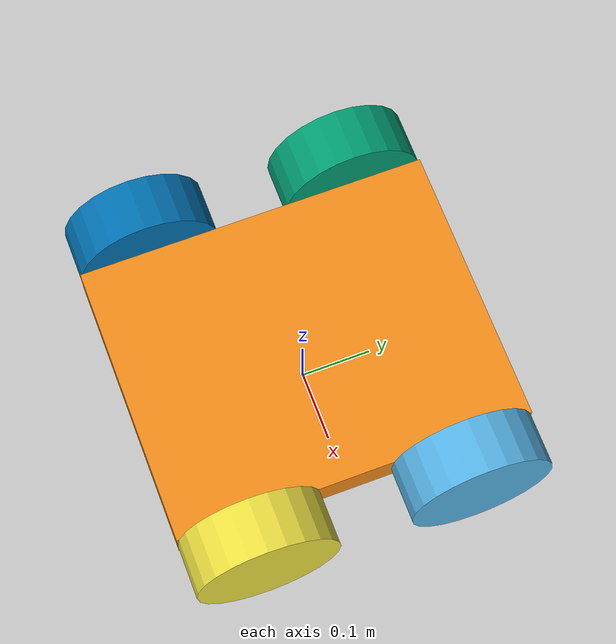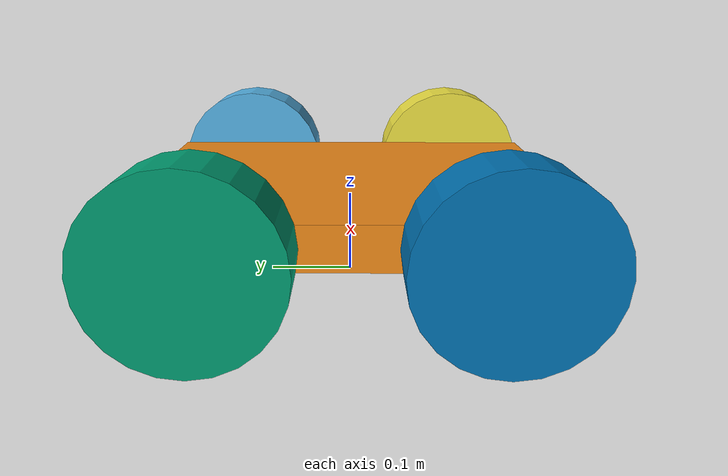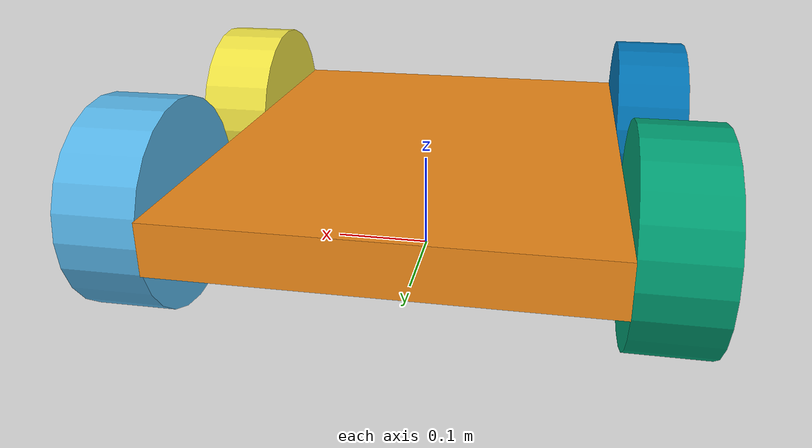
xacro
<?xml version = "1.0"?>
<robot xmlns:xacro="http://www.ros.org/wiki/xacro" name="slambot">

<xacro:property name = "wheel_radius" value = "0.1" />
<xacro:property name = "wheel_width" value = "0.075" />
<xacro:property name = "wheel_mass" value = "10.0" />

<xacro:property name = "base_width" value = "0.4" />
<xacro:property name = "base_length" value = "0.5" />
<xacro:property name = "base_height" value = "0.05" />
<xacro:property name = "base_mass" value = "10000.0" />

<xacro:property name = "laser_mass" value = "0.1" />
<xacro:property name = "laser_height" value = "0.1" />
<xacro:property name = "laser_radius" value = "0.1" />

	<link name = "base_link" >
		<inertial>
			<mass value = "${base_mass}" />
			<origin xyz = "0 0 ${wheel_radius}" rpy = "0 0 0" />
			<inertia ixx = "${base_mass*(base_length*base_length+base_height*base_height)/12}"
					 ixy = "0.0"
					 ixz = "0.0"
					 iyy = "${base_mass*(base_width*base_width+base_height*base_height)/12}"
					 iyz = "0.0"
					 izz = "${base_mass*(base_length*base_length+base_width*base_width)/12}" />
		</inertial>

		<visual name = "base_link_visual" >
			<origin xyz = "0 0 ${wheel_radius}" rpy = "0 0 0" />
			<geometry>
				<box size = "${base_width} ${base_length} ${base_height}" />
			</geometry>
		</visual>

		<collision name = "base_link_collision" >
			<origin xyz = "0 0 ${wheel_radius}" rpy = "0 0 0" />
			<geometry>
				<box size = "${base_width} ${base_length} ${base_height}" />
			</geometry>
		</collision>
	</link>

	<link name = "front_right_wheel_link" >
		<inertial>
			<mass value = "${wheel_mass}" />
			<origin xyz = "0 0 0" rpy = "0 0 0" />
			<inertia ixx = "${base_mass*(wheel_radius*wheel_radius)/2}"
					 ixy = "0.0"
					 ixz = "0.0"
					 iyy = "0.0"
					 iyz = "0.0"
					 izz = "0.0" />
		</inertial>

		<visual name = "front_right_wheel_visual" >
			<origin xyz = "0 0 0" rpy = "0 1.571 0" />
			<geometry>
				<cylinder length = "${wheel_width}" radius = "${wheel_radius}" />
			</geometry>
		</visual>

		<collision name = "front_right_wheel_collision" >
			<origin xyz = "0 0 0" rpy = "0 1.571 0" />
			<geometry>
				<cylinder length = "${wheel_width}" radius = "${wheel_radius}" />
			</geometry>
		</collision>
	</link>

	<link name = "front_left_wheel_link" >
		<inertial>
			<mass value = "${wheel_mass}" />
			<origin xyz = "0 0 0" rpy = "0 0 0" />
			<inertia ixx = "${base_mass*(wheel_radius*wheel_radius)/2}"
					 ixy = "0.0"
					 ixz = "0.0"
					 iyy = "0.0"
					 iyz = "0.0"
					 izz = "0.0" />
		</inertial>

		<visual name = "front_left_wheel_visual" >
			<origin xyz = "0 0 0" rpy = "0 -1.571 0" />
			<geometry>
				<cylinder length = "${wheel_width}" radius = "${wheel_radius}" />
			</geometry>
		</visual>

		<collision name = "front_left_wheel_collision" >
			<origin xyz = "0 0 0" rpy = "0 -1.571 0" />
			<geometry>
				<cylinder length = "${wheel_width}" radius = "${wheel_radius}" />
			</geometry>
		</collision>
	</link>

	<link name = "back_right_wheel_link" >
		<inertial>
			<mass value = "${wheel_mass}" />
			<origin xyz = "0 0 0" rpy = "0 0 0" />
			<inertia ixx = "${base_mass*(wheel_radius*wheel_radius)/2}"
					 ixy = "0.0"
					 ixz = "0.0"
					 iyy = "0.0"
					 iyz = "0.0"
					 izz = "0.0" />
		</inertial>

		<visual name = "back_right_wheel_visual" >
			<origin xyz = "0 0 0" rpy = "0 1.571 0" />
			<geometry>
				<cylinder length = "${wheel_width}" radius = "${wheel_radius}" />
			</geometry>
		</visual>

		<collision name = "back_right_wheel_collision" >
			<origin xyz = "0 0 0" rpy = "0 1.571 0" />
			<geometry>
				<cylinder length = "${wheel_width}" radius = "${wheel_radius}" />
			</geometry>
		</collision>
	</link>

	<link name = "back_left_wheel_link" >
		<inertial>
			<mass value = "${wheel_mass}" />
			<origin xyz = "0 0 0" rpy = "0 0 0" />
			<inertia ixx = "${base_mass*(wheel_radius*wheel_radius)/2}"
					 ixy = "0.0"
					 ixz = "0.0"
					 iyy = "0.0"
					 iyz = "0.0"
					 izz = "0.0" />
		</inertial>

		<visual name = "back_left_wheel_visual" >
			<origin xyz = "0 0 0" rpy = "0 -1.571 0" />
			<geometry>
				<cylinder length = "${wheel_width}" radius = "${wheel_radius}" />
			</geometry>
		</visual>

		<collision name = "back_left_wheel_collision" >
			<origin xyz = "0 0 0" rpy = "0 -1.571 0" />
			<geometry>
				<cylinder length = "${wheel_width}" radius = "${wheel_radius}" />
			</geometry>
		</collision>
	</link>

	<joint name = "front_right_wheel_joint" type = "continuous" >
		<parent link = "base_link" />
		<child link = "front_right_wheel_link" />
		<origin xyz = "${base_width/2+wheel_width/2} ${base_length/2-wheel_radius} ${wheel_radius}" rpy = "0 0 0" />
		<axis xyz = "-1 0 0" />
	</joint>

	<joint name = "front_left_wheel_joint" type = "continuous" >
		<parent link = "base_link" />
		<child link = "front_left_wheel_link" />
		<origin xyz = "-${base_width/2+wheel_width/2} ${base_length/2-wheel_radius} ${wheel_radius}" rpy = "0 0 0" />
		<axis xyz = "-1 0 0" />
	</joint>

	<joint name = "back_right_wheel_joint" type = "continuous" >
		<parent link = "base_link" />
		<child link = "back_right_wheel_link" />
		<origin xyz = "${base_width/2+wheel_width/2} -${base_length/2-wheel_radius} ${wheel_radius}" rpy = "0 0 0" />
		<axis xyz = "-1 0 0" />
	</joint>

	<joint name = "back_left_wheel_joint" type = "continuous" >
		<parent link = "base_link" />
		<child link = "back_left_wheel_link" />
		<origin xyz = "-${base_width/2+wheel_width/2} -${base_length/2-wheel_radius} ${wheel_radius}" rpy = "0 0 0" />
		<axis xyz = "-1 0 0" />
	</joint>

	<transmission name = "front_right_wheel_motor" >
	    <type> hardware_interface </type>
    	<joint name= "front_right_wheel_joint" >
      		<hardwareInterface> hardware_interface/VelocityJointInterface </hardwareInterface>
    	</joint>
    	<actuator name = "front_right_wheel_joint" >
      		<hardwareInterface> VelocityJointInterface </hardwareInterface>
      		<mechanicalReduction> 1 </mechanicalReduction>
    	</actuator>
    </transmission>

    <transmission name = "front_left_wheel_motor" >
	    <type> hardware_interface </type>
    	<joint name = "front_left_wheel_joint" >
      		<hardwareInterface> hardware_interface/VelocityJointInterface </hardwareInterface>
    	</joint>
    	<actuator name = "front_left_wheel_joint" >
      		<hardwareInterface> VelocityJointInterface </hardwareInterface>
      		<mechanicalReduction> 1 </mechanicalReduction>
    	</actuator>
    </transmission>

	<transmission name = "back_right_wheel_motor" >
	    <type> hardware_interface </type>
    	<joint name= "back_right_wheel_joint" >
      		<hardwareInterface> hardware_interface/VelocityJointInterface </hardwareInterface>
    	</joint>
    	<actuator name = "back_right_wheel_joint" >
      		<hardwareInterface> VelocityJointInterface </hardwareInterface>
      		<mechanicalReduction> 1 </mechanicalReduction>
    	</actuator>
    </transmission>

    <transmission name = "back_left_wheel_motor" >
	    <type> hardware_interface </type>
    	<joint name = "back_left_wheel_joint" >
      		<hardwareInterface> hardware_interface/VelocityJointInterface </hardwareInterface>
    	</joint>
    	<actuator name = "back_left_wheel_joint" >
      		<hardwareInterface> VelocityJointInterface </hardwareInterface>
      		<mechanicalReduction> 1 </mechanicalReduction>
    	</actuator>
    </transmission>

	<gazebo>
		<static> false </static>

		<plugin name="gazebo_ros_control" filename="libgazebo_ros_control.so">
			<robotNamespace> /slambot </robotNamespace>
		</plugin>
	</gazebo>

	<gazebo reference = "base_link">
		<sensor type="ray" name="laser">
			<pose> 0 0 ${2.5*laser_height} 0 0 1.571 </pose>
			<visualize> false </visualize>
			<update_rate> 40 </update_rate>
			<ray>
		    	<scan>
		      		<horizontal>
		        		<samples>720</samples>
		        		<resolution>1</resolution>
		        		<min_angle>-${pi}</min_angle>
		        		<max_angle>${pi}</max_angle>
		      		</horizontal>
		    	</scan>

		    	<range>
		      		<min>0.10</min>
		      		<max>30.0</max>
		      		<resolution>0.01</resolution>
		    	</range>

		    	<noise>
		      		<type>gaussian</type>
		      		<mean>0.0</mean>
		      		<stddev>0.01</stddev>
		    	</noise>
		  	</ray>

			<plugin name="gazebo_ros_head_hokuyo_controller" filename="libgazebo_ros_laser.so">
				<topicName> /scan </topicName>
				<frameName> base_link </frameName>
			</plugin>
		</sensor>
		<material> Gazebo/Orange </material>
  	</gazebo>

</robot>
